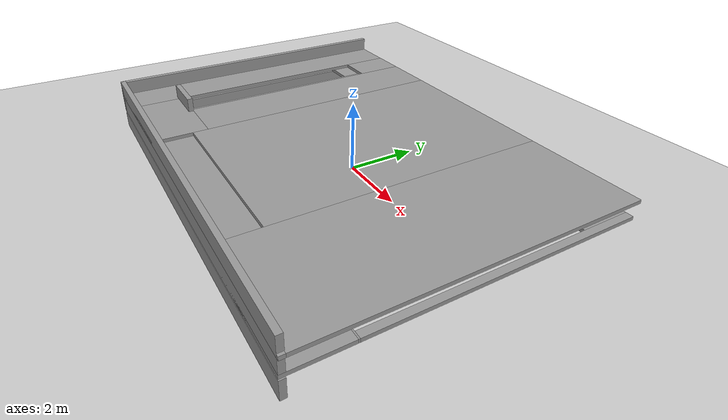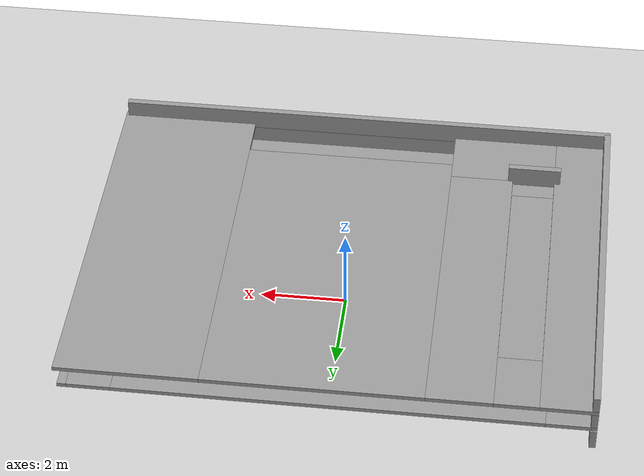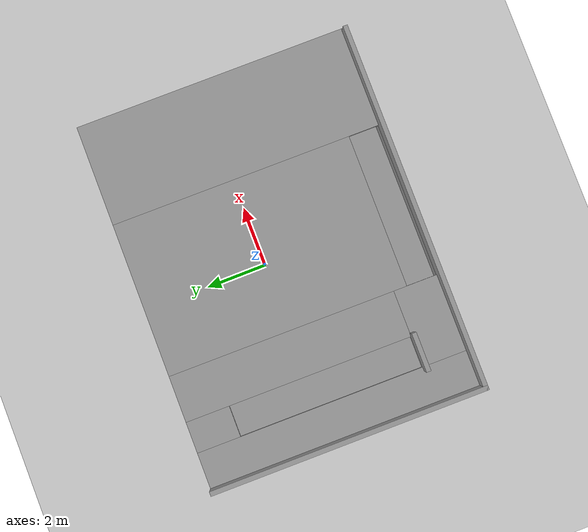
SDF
<sdf version="1.7">
 <world name="default">
  <model name="ground_plane">
   <static>1</static>
   <link name="link">
    <collision name="collision">
     <geometry><plane><normal>0 0 1</normal><size>100 100</size></plane></geometry>
     <surface>
      <contact><collide_bitmask>65535</collide_bitmask></contact>
      <friction><ode><mu>100</mu><mu2>50</mu2></ode></friction>
     </surface>
    </collision>
    <visual name="visual">
     <cast_shadows>0</cast_shadows>
     <geometry><plane><normal>0 0 1</normal><size>100 100</size></plane></geometry>
     <material>
      <script><uri>file://media/materials/scripts/gazebo.material</uri><name>Gazebo/Grey</name></script>
     </material>
    </visual>
   </link>
  </model>
  <model name="builing1">
   <pose>0.045986 -0.516202 0 0 -0 0</pose>
   <link name="Floor_0">
    <pose>-0.031956 0 0.54 0 -0 0</pose>
    <visual name="Floor_0_Visual_0">
     <pose>-5.93283 0 0.05 0 -0 0</pose>
     <geometry><box><size>0.134333 9 0.1</size></box></geometry>
     <material>
      <script><uri>file://media/materials/scripts/gazebo.material</uri><name>Gazebo/Grey</name></script>
      <ambient>1 1 1 1</ambient>
     </material>
     <meta><layer>1</layer></meta>
    </visual>
    <collision name="Floor_0_Collision_0">
     <geometry><box><size>0.134333 9 0.1</size></box></geometry>
     <pose>-5.93283 0 0.05 0 -0 0</pose>
    </collision>
    <visual name="Floor_0_Visual_1">
     <pose>0.067166 -3.72455 0.05 0 -0 0</pose>
     <geometry><box><size>11.8657 1.5509 0.1</size></box></geometry>
     <material>
      <script><uri>file://media/materials/scripts/gazebo.material</uri><name>Gazebo/Grey</name></script>
      <ambient>1 1 1 1</ambient>
     </material>
     <meta><layer>1</layer></meta>
    </visual>
    <collision name="Floor_0_Collision_1">
     <geometry><box><size>11.8657 1.5509 0.1</size></box></geometry>
     <pose>0.067166 -3.72455 0.05 0 -0 0</pose>
    </collision>
    <visual name="Floor_0_Visual_2">
     <pose>-0.032905 0.77545 0.05 0 -0 0</pose>
     <geometry><box><size>9.66553 7.4491 0.1</size></box></geometry>
     <material>
      <script><uri>file://media/materials/scripts/gazebo.material</uri><name>Gazebo/Grey</name></script>
      <ambient>1 1 1 1</ambient>
     </material>
     <meta><layer>1</layer></meta>
    </visual>
    <collision name="Floor_0_Collision_2">
     <geometry><box><size>9.66553 7.4491 0.1</size></box></geometry>
     <pose>-0.032905 0.77545 0.05 0 -0 0</pose>
    </collision>
    <visual name="Floor_0_Visual_3">
     <pose>5.39993 -2.9298 0.05 0 -0 0</pose>
     <geometry><box><size>1.20014 0.038607 0.1</size></box></geometry>
     <material>
      <script><uri>file://media/materials/scripts/gazebo.material</uri><name>Gazebo/Grey</name></script>
      <ambient>1 1 1 1</ambient>
     </material>
     <meta><layer>1</layer></meta>
    </visual>
    <collision name="Floor_0_Collision_3">
     <geometry><box><size>1.20014 0.038607 0.1</size></box></geometry>
     <pose>5.39993 -2.9298 0.05 0 -0 0</pose>
    </collision>
    <visual name="Floor_0_Visual_4">
     <pose>5.89993 0.794754 0.05 0 -0 0</pose>
     <geometry><box><size>0.200142 7.41049 0.1</size></box></geometry>
     <material>
      <script><uri>file://media/materials/scripts/gazebo.material</uri><name>Gazebo/Grey</name></script>
      <ambient>1 1 1 1</ambient>
     </material>
     <meta><layer>1</layer></meta>
    </visual>
    <collision name="Floor_0_Collision_4">
     <geometry><box><size>0.200142 7.41049 0.1</size></box></geometry>
     <pose>5.89993 0.794754 0.05 0 -0 0</pose>
    </collision>
    <visual name="Floor_0_Visual_5">
     <pose>-5.36567 3.77545 0.05 0 -0 0</pose>
     <geometry><box><size>1 1.4491 0.1</size></box></geometry>
     <material>
      <script><uri>file://media/materials/scripts/gazebo.material</uri><name>Gazebo/Grey</name></script>
      <ambient>1 1 1 1</ambient>
     </material>
     <meta><layer>1</layer></meta>
    </visual>
    <collision name="Floor_0_Collision_5">
     <geometry><box><size>1 1.4491 0.1</size></box></geometry>
     <pose>-5.36567 3.77545 0.05 0 -0 0</pose>
    </collision>
    <visual name="Floor_0_Visual_6">
     <pose>5.29986 3.79475 0.05 0 -0 0</pose>
     <geometry><box><size>1 1.41049 0.1</size></box></geometry>
     <material>
      <script><uri>file://media/materials/scripts/gazebo.material</uri><name>Gazebo/Grey</name></script>
      <ambient>1 1 1 1</ambient>
     </material>
     <meta><layer>1</layer></meta>
    </visual>
    <collision name="Floor_0_Collision_6">
     <geometry><box><size>1 1.41049 0.1</size></box></geometry>
     <pose>5.29986 3.79475 0.05 0 -0 0</pose>
    </collision>
   </link>
   <link name="Floor_1">
    <pose>-4.5e-05 0 1.04 0 -0 0</pose>
    <visual name="Floor_1_Visual_0">
     <pose>-5.38471 0 0.05 0 -0 0</pose>
     <geometry><box><size>1.2944 9 0.1</size></box></geometry>
     <material>
      <script><uri>file://media/materials/scripts/gazebo.material</uri><name>Gazebo/Grey</name></script>
      <ambient>1 1 1 1</ambient>
     </material>
     <meta><layer>2</layer></meta>
    </visual>
    <collision name="Floor_1_Collision_0">
     <geometry><box><size>1.2944 9 0.1</size></box></geometry>
     <pose>-5.38471 0 0.05 0 -0 0</pose>
    </collision>
    <visual name="Floor_1_Visual_1">
     <pose>-3.48872 -3.70947 0.05 0 -0 0</pose>
     <geometry><box><size>2.49759 1.58106 0.1</size></box></geometry>
     <material>
      <script><uri>file://media/materials/scripts/gazebo.material</uri><name>Gazebo/Grey</name></script>
      <ambient>1 1 1 1</ambient>
     </material>
     <meta><layer>2</layer></meta>
    </visual>
    <collision name="Floor_1_Collision_1">
     <geometry><box><size>2.49759 1.58106 0.1</size></box></geometry>
     <pose>-3.48872 -3.70947 0.05 0 -0 0</pose>
    </collision>
    <visual name="Floor_1_Visual_2">
     <pose>1.89599 -4.42887 0.05 0 -0 0</pose>
     <geometry><box><size>8.27183 0.142252 0.1</size></box></geometry>
     <material>
      <script><uri>file://media/materials/scripts/gazebo.material</uri><name>Gazebo/Grey</name></script>
      <ambient>1 1 1 1</ambient>
     </material>
     <meta><layer>2</layer></meta>
    </visual>
    <collision name="Floor_1_Collision_2">
     <geometry><box><size>8.27183 0.142252 0.1</size></box></geometry>
     <pose>1.89599 -4.42887 0.05 0 -0 0</pose>
    </collision>
    <visual name="Floor_1_Visual_3">
     <pose>4.39599 0.071126 0.05 0 -0 0</pose>
     <geometry><box><size>3.27183 8.85775 0.1</size></box></geometry>
     <material>
      <script><uri>file://media/materials/scripts/gazebo.material</uri><name>Gazebo/Grey</name></script>
      <ambient>1 1 1 1</ambient>
     </material>
     <meta><layer>2</layer></meta>
    </visual>
    <collision name="Floor_1_Collision_3">
     <geometry><box><size>3.27183 8.85775 0.1</size></box></geometry>
     <pose>4.39599 0.071126 0.05 0 -0 0</pose>
    </collision>
    <visual name="Floor_1_Visual_4">
     <pose>0.260077 0.571126 0.05 0 -0 0</pose>
     <geometry><box><size>5 7.85775 0.1</size></box></geometry>
     <material>
      <script><uri>file://media/materials/scripts/gazebo.material</uri><name>Gazebo/Grey</name></script>
      <ambient>1 1 1 1</ambient>
     </material>
     <meta><layer>2</layer></meta>
    </visual>
    <collision name="Floor_1_Collision_4">
     <geometry><box><size>5 7.85775 0.1</size></box></geometry>
     <pose>0.260077 0.571126 0.05 0 -0 0</pose>
    </collision>
    <visual name="Floor_1_Visual_5">
     <pose>-2.98872 0.79053 0.05 0 -0 0</pose>
     <geometry><box><size>1.49759 7.41894 0.1</size></box></geometry>
     <material>
      <script><uri>file://media/materials/scripts/gazebo.material</uri><name>Gazebo/Grey</name></script>
      <ambient>1 1 1 1</ambient>
     </material>
     <meta><layer>2</layer></meta>
    </visual>
    <collision name="Floor_1_Collision_5">
     <geometry><box><size>1.49759 7.41894 0.1</size></box></geometry>
     <pose>-2.98872 0.79053 0.05 0 -0 0</pose>
    </collision>
    <visual name="Floor_1_Visual_6">
     <pose>-4.23751 3.79053 0.05 0 -0 0</pose>
     <geometry><box><size>1 1.41894 0.1</size></box></geometry>
     <material>
      <script><uri>file://media/materials/scripts/gazebo.material</uri><name>Gazebo/Grey</name></script>
      <ambient>1 1 1 1</ambient>
     </material>
     <meta><layer>2</layer></meta>
    </visual>
    <collision name="Floor_1_Collision_6">
     <geometry><box><size>1 1.41894 0.1</size></box></geometry>
     <pose>-4.23751 3.79053 0.05 0 -0 0</pose>
    </collision>
   </link>
   <link name="Wall_1">
    <collision name="Wall_1_Collision">
     <geometry><box><size>9 0.15 0.5</size></box></geometry>
     <pose>0 0 0.25 0 -0 0</pose>
    </collision>
    <visual name="Wall_1_Visual">
     <pose>0 0 0.25 0 -0 0</pose>
     <geometry><box><size>9 0.15 0.5</size></box></geometry>
     <material>
      <script><uri>file://media/materials/scripts/gazebo.material</uri><name>Gazebo/Grey</name></script>
      <ambient>1 1 1 1</ambient>
     </material>
     <meta><layer>0</layer></meta>
    </visual>
    <pose>-5.95695 0 0 0 -0 -1.5708</pose>
   </link>
   <link name="Wall_12">
    <collision name="Wall_12_Collision">
     <geometry><box><size>3.25 0.15 0.5</size></box></geometry>
     <pose>0 0 0.25 0 -0 0</pose>
    </collision>
    <visual name="Wall_12_Visual">
     <pose>0 0 0.25 0 -0 0</pose>
     <geometry><box><size>3.25 0.15 0.5</size></box></geometry>
     <material>
      <script><uri>file://media/materials/scripts/gazebo.material</uri><name>Gazebo/Grey</name></script>
      <ambient>1 1 1 1</ambient>
     </material>
     <meta><layer>0</layer></meta>
    </visual>
    <pose>-3.24396 -1.043 0 0 -0 0</pose>
   </link>
   <link name="Wall_22">
    <collision name="Wall_22_Collision">
     <geometry><box><size>9 0.15 0.5</size></box></geometry>
     <pose>0 0 0.25 0 -0 0</pose>
    </collision>
    <visual name="Wall_22_Visual">
     <pose>0 0 0.25 0 -0 0</pose>
     <geometry><box><size>9 0.15 0.5</size></box></geometry>
     <material>
      <script><uri>file://media/materials/scripts/gazebo.material</uri><name>Gazebo/Grey</name></script>
      <ambient>1 1 1 1</ambient>
     </material>
     <meta><layer>1</layer></meta>
    </visual>
    <pose>-5.95695 0 0.54 0 -0 -1.5708</pose>
   </link>
   <link name="Wall_23">
    <collision name="Wall_23_Collision">
     <geometry><box><size>12 0.15 0.5</size></box></geometry>
     <pose>0 0 0.25 0 -0 0</pose>
    </collision>
    <visual name="Wall_23_Visual">
     <pose>0 0 0.25 0 -0 0</pose>
     <geometry><box><size>12 0.15 0.5</size></box></geometry>
     <material>
      <script><uri>file://media/materials/scripts/gazebo.material</uri><name>Gazebo/Grey</name></script>
      <ambient>1 1 1 1</ambient>
     </material>
     <meta><layer>1</layer></meta>
    </visual>
    <pose>-0.031956 -4.425 0.54 0 -0 0</pose>
   </link>
   <link name="Wall_3">
    <collision name="Wall_3_Collision">
     <geometry><box><size>12 0.15 0.5</size></box></geometry>
     <pose>0 0 0.25 0 -0 0</pose>
    </collision>
    <visual name="Wall_3_Visual">
     <pose>0 0 0.25 0 -0 0</pose>
     <geometry><box><size>12 0.15 0.5</size></box></geometry>
     <material>
      <script><uri>file://media/materials/scripts/gazebo.material</uri><name>Gazebo/Grey</name></script>
      <ambient>1 1 1 1</ambient>
     </material>
     <meta><layer>0</layer></meta>
    </visual>
    <pose>-0.031956 -4.425 0 0 -0 0</pose>
   </link>
   <link name="Wall_51">
    <collision name="Wall_51_Collision">
     <geometry><box><size>9 0.15 0.5</size></box></geometry>
     <pose>0 0 0.25 0 -0 0</pose>
    </collision>
    <visual name="Wall_51_Visual">
     <pose>0 0 0.25 0 -0 0</pose>
     <geometry><box><size>9 0.15 0.5</size></box></geometry>
     <material>
      <script><uri>file://media/materials/scripts/gazebo.material</uri><name>Gazebo/Grey</name></script>
      <ambient>1 1 1 1</ambient>
     </material>
     <meta><layer>2</layer></meta>
    </visual>
    <pose>-5.95695 0 1.04 0 -0 -1.5708</pose>
   </link>
   <link name="Wall_52">
    <collision name="Wall_52_Collision">
     <geometry><box><size>12 0.15 0.5</size></box></geometry>
     <pose>0 0 0.25 0 -0 0</pose>
    </collision>
    <visual name="Wall_52_Visual">
     <pose>0 0 0.25 0 -0 0</pose>
     <geometry><box><size>12 0.15 0.5</size></box></geometry>
     <material>
      <script><uri>file://media/materials/scripts/gazebo.material</uri><name>Gazebo/Grey</name></script>
      <ambient>1 1 1 1</ambient>
     </material>
     <meta><layer>2</layer></meta>
    </visual>
    <pose>-0.031956 -4.425 1.04 0 -0 0</pose>
   </link>
   <link name="Wall_57">
    <collision name="Wall_57_Collision">
     <geometry><box><size>1.25 0.15 0.5</size></box></geometry>
     <pose>0 0 0.25 0 -0 0</pose>
    </collision>
    <visual name="Wall_57_Visual">
     <pose>0 0 0.25 0 -0 0</pose>
     <geometry><box><size>1.25 0.15 0.5</size></box></geometry>
     <material>
      <script><uri>file://media/materials/scripts/gazebo.material</uri><name>Gazebo/Grey</name></script>
      <ambient>1 1 1 1</ambient>
     </material>
     <meta><layer>2</layer></meta>
    </visual>
    <pose>-4.24877 -2.98302 1.04 0 -0 3.14156</pose>
   </link>
   <static>1</static>
  </model>
 </world>
</sdf>
